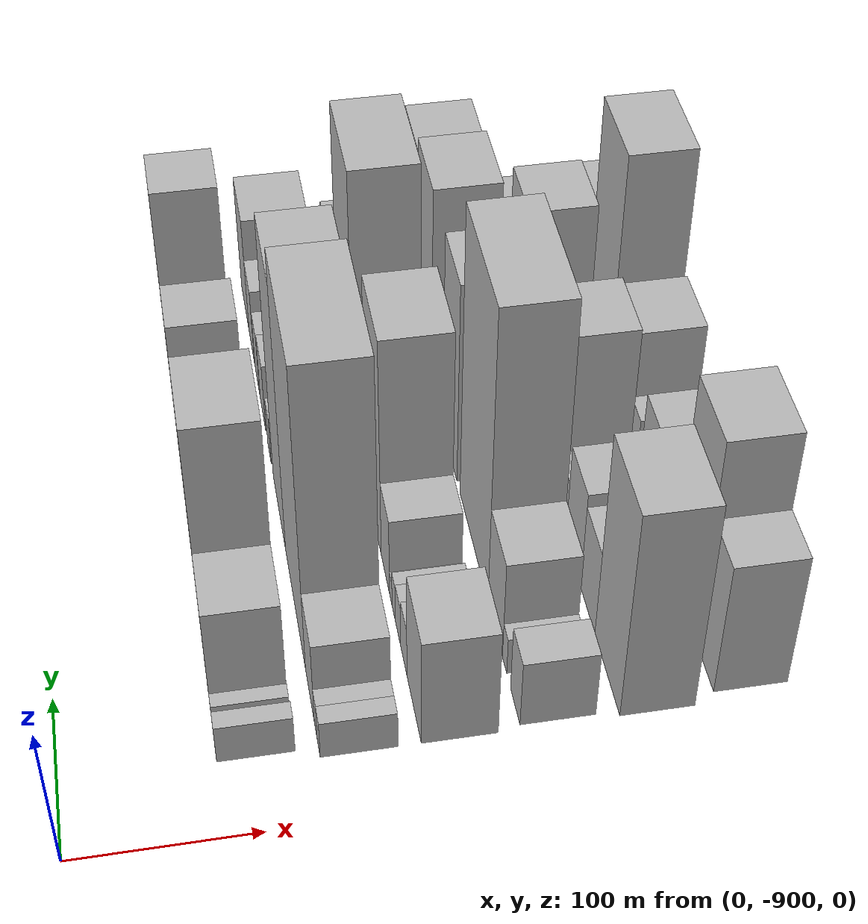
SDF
<sdf version="1.6">
 <world name="default">
  <model name="building_1">
   <static>1</static>
   <pose>100.0000 -848.5765 0 0.000000 0.000000 0.000000</pose>
   <link name="link">
    <pose>0 0 13.50 0 0 0</pose>
    <collision name="collision"><geometry><box><size>40.0000 10.8470 27.0000</size></box></geometry></collision>
    <visual name="visual">
     <cast_shadows>0</cast_shadows>
     <geometry><box><size>40.0000 10.8470 27.0000</size></box></geometry>
     <material>
      <script>
       <uri>model://HANNAS_wall/materials/scripts</uri>
       <uri>model://HANNAS_wall/materials/textures</uri>
       <name>vrc/HANNAS_wall</name>
      </script>
     </material>
    </visual>
   </link>
  </model>
  <model name="building_2">
   <static>1</static>
   <pose>100.0000 -828.7338 0 0.000000 0.000000 0.000000</pose>
   <link name="link">
    <pose>0 0 9.00 0 0 0</pose>
    <collision name="collision"><geometry><box><size>40.0000 8.8384 18.0000</size></box></geometry></collision>
    <visual name="visual">
     <cast_shadows>0</cast_shadows>
     <geometry><box><size>40.0000 8.8384 18.0000</size></box></geometry>
     <material>
      <script>
       <uri>model://HANNAS_wall/materials/scripts</uri>
       <uri>model://HANNAS_wall/materials/textures</uri>
       <name>vrc/HANNAS_wall</name>
      </script>
     </material>
    </visual>
   </link>
  </model>
  <model name="building_3">
   <static>1</static>
   <pose>100.0000 -800.2279 0 0.000000 0.000000 0.000000</pose>
   <link name="link">
    <pose>0 0 37.50 0 0 0</pose>
    <collision name="collision"><geometry><box><size>40.0000 42.1734 75.0000</size></box></geometry></collision>
    <visual name="visual">
     <cast_shadows>0</cast_shadows>
     <geometry><box><size>40.0000 42.1734 75.0000</size></box></geometry>
     <material>
      <script>
       <uri>model://HANNAS_wall/materials/scripts</uri>
       <uri>model://HANNAS_wall/materials/textures</uri>
       <name>vrc/HANNAS_wall</name>
      </script>
     </material>
    </visual>
   </link>
  </model>
  <model name="building_4">
   <static>1</static>
   <pose>100.0000 -752.8294 0 0.000000 0.000000 0.000000</pose>
   <link name="link">
    <pose>0 0 81.00 0 0 0</pose>
    <collision name="collision"><geometry><box><size>40.0000 52.6236 162.0000</size></box></geometry></collision>
    <visual name="visual">
     <cast_shadows>0</cast_shadows>
     <geometry><box><size>40.0000 52.6236 162.0000</size></box></geometry>
     <material>
      <script>
       <uri>model://HANNAS_wall/materials/scripts</uri>
       <uri>model://HANNAS_wall/materials/textures</uri>
       <name>vrc/HANNAS_wall</name>
      </script>
     </material>
    </visual>
   </link>
  </model>
  <model name="building_5">
   <static>1</static>
   <pose>100.0000 -707.2681 0 0.000000 0.000000 0.000000</pose>
   <link name="link">
    <pose>0 0 58.50 0 0 0</pose>
    <collision name="collision"><geometry><box><size>40.0000 38.4989 117.0000</size></box></geometry></collision>
    <visual name="visual">
     <cast_shadows>0</cast_shadows>
     <geometry><box><size>40.0000 38.4989 117.0000</size></box></geometry>
     <material>
      <script>
       <uri>model://HANNAS_wall/materials/scripts</uri>
       <uri>model://HANNAS_wall/materials/textures</uri>
       <name>vrc/HANNAS_wall</name>
      </script>
     </material>
    </visual>
   </link>
  </model>
  <model name="building_6">
   <static>1</static>
   <pose>100.0000 -682.8651 0 0.000000 0.000000 0.000000</pose>
   <link name="link">
    <pose>0 0 12.00 0 0 0</pose>
    <collision name="collision"><geometry><box><size>40.0000 10.3071 24.0000</size></box></geometry></collision>
    <visual name="visual">
     <cast_shadows>0</cast_shadows>
     <geometry><box><size>40.0000 10.3071 24.0000</size></box></geometry>
     <material>
      <script>
       <uri>model://HANNAS_wall/materials/scripts</uri>
       <uri>model://HANNAS_wall/materials/textures</uri>
       <name>vrc/HANNAS_wall</name>
      </script>
     </material>
    </visual>
   </link>
  </model>
  <model name="building_7">
   <static>1</static>
   <pose>100.0000 -650.5858 0 0.000000 0.000000 0.000000</pose>
   <link name="link">
    <pose>0 0 33.00 0 0 0</pose>
    <collision name="collision"><geometry><box><size>40.0000 38.2516 66.0000</size></box></geometry></collision>
    <visual name="visual">
     <cast_shadows>0</cast_shadows>
     <geometry><box><size>40.0000 38.2516 66.0000</size></box></geometry>
     <material>
      <script>
       <uri>model://HANNAS_wall/materials/scripts</uri>
       <uri>model://HANNAS_wall/materials/textures</uri>
       <name>vrc/HANNAS_wall</name>
      </script>
     </material>
    </visual>
   </link>
  </model>
  <model name="building_8">
   <static>1</static>
   <pose>100.0000 -613.0949 0 0.000000 0.000000 0.000000</pose>
   <link name="link">
    <pose>0 0 49.50 0 0 0</pose>
    <collision name="collision"><geometry><box><size>40.0000 36.7302 99.0000</size></box></geometry></collision>
    <visual name="visual">
     <cast_shadows>0</cast_shadows>
     <geometry><box><size>40.0000 36.7302 99.0000</size></box></geometry>
     <material>
      <script>
       <uri>model://HANNAS_wall/materials/scripts</uri>
       <uri>model://HANNAS_wall/materials/textures</uri>
       <name>vrc/HANNAS_wall</name>
      </script>
     </material>
    </visual>
   </link>
  </model>
  <model name="building_9">
   <static>1</static>
   <pose>100.0000 -570.5289 0 0.000000 0.000000 0.000000</pose>
   <link name="link">
    <pose>0 0 30.00 0 0 0</pose>
    <collision name="collision"><geometry><box><size>40.0000 30.4017 60.0000</size></box></geometry></collision>
    <visual name="visual">
     <cast_shadows>0</cast_shadows>
     <geometry><box><size>40.0000 30.4017 60.0000</size></box></geometry>
     <material>
      <script>
       <uri>model://HANNAS_wall/materials/scripts</uri>
       <uri>model://HANNAS_wall/materials/textures</uri>
       <name>vrc/HANNAS_wall</name>
      </script>
     </material>
    </visual>
   </link>
  </model>
  <model name="building_10">
   <static>1</static>
   <pose>100.0000 -543.8364 0 0.000000 0.000000 0.000000</pose>
   <link name="link">
    <pose>0 0 19.50 0 0 0</pose>
    <collision name="collision"><geometry><box><size>40.0000 22.9834 39.0000</size></box></geometry></collision>
    <visual name="visual">
     <cast_shadows>0</cast_shadows>
     <geometry><box><size>40.0000 22.9834 39.0000</size></box></geometry>
     <material>
      <script>
       <uri>model://HANNAS_wall/materials/scripts</uri>
       <uri>model://HANNAS_wall/materials/textures</uri>
       <name>vrc/HANNAS_wall</name>
      </script>
     </material>
    </visual>
   </link>
  </model>
  <model name="building_11">
   <static>1</static>
   <pose>100.0000 -509.9247 0 0.000000 0.000000 0.000000</pose>
   <link name="link">
    <pose>0 0 57.00 0 0 0</pose>
    <collision name="collision"><geometry><box><size>40.0000 38.8399 114.0000</size></box></geometry></collision>
    <visual name="visual">
     <cast_shadows>0</cast_shadows>
     <geometry><box><size>40.0000 38.8399 114.0000</size></box></geometry>
     <material>
      <script>
       <uri>model://HANNAS_wall/materials/scripts</uri>
       <uri>model://HANNAS_wall/materials/textures</uri>
       <name>vrc/HANNAS_wall</name>
      </script>
     </material>
    </visual>
   </link>
  </model>
  <model name="building_51">
   <static>1</static>
   <pose>152.0000 -854.2418 0 0.000000 0.000000 0.000000</pose>
   <link name="link">
    <pose>0 0 13.50 0 0 0</pose>
    <collision name="collision"><geometry><box><size>40.0000 11.5164 27.0000</size></box></geometry></collision>
    <visual name="visual">
     <cast_shadows>0</cast_shadows>
     <geometry><box><size>40.0000 11.5164 27.0000</size></box></geometry>
     <material>
      <script>
       <uri>model://HANNAS_wall/materials/scripts</uri>
       <uri>model://HANNAS_wall/materials/textures</uri>
       <name>vrc/HANNAS_wall</name>
      </script>
     </material>
    </visual>
   </link>
  </model>
  <model name="building_52">
   <static>1</static>
   <pose>152.0000 -843.0489 0 0.000000 0.000000 0.000000</pose>
   <link name="link">
    <pose>0 0 13.50 0 0 0</pose>
    <collision name="collision"><geometry><box><size>40.0000 10.8695 27.0000</size></box></geometry></collision>
    <visual name="visual">
     <cast_shadows>0</cast_shadows>
     <geometry><box><size>40.0000 10.8695 27.0000</size></box></geometry>
     <material>
      <script>
       <uri>model://HANNAS_wall/materials/scripts</uri>
       <uri>model://HANNAS_wall/materials/textures</uri>
       <name>vrc/HANNAS_wall</name>
      </script>
     </material>
    </visual>
   </link>
  </model>
  <model name="building_53">
   <static>1</static>
   <pose>152.0000 -819.8886 0 0.000000 0.000000 0.000000</pose>
   <link name="link">
    <pose>0 0 30.00 0 0 0</pose>
    <collision name="collision"><geometry><box><size>40.0000 35.4512 60.0000</size></box></geometry></collision>
    <visual name="visual">
     <cast_shadows>0</cast_shadows>
     <geometry><box><size>40.0000 35.4512 60.0000</size></box></geometry>
     <material>
      <script>
       <uri>model://HANNAS_wall/materials/scripts</uri>
       <uri>model://HANNAS_wall/materials/textures</uri>
       <name>vrc/HANNAS_wall</name>
      </script>
     </material>
    </visual>
   </link>
  </model>
  <model name="building_54">
   <static>1</static>
   <pose>152.0000 -759.0774 0 0.000000 0.000000 0.000000</pose>
   <link name="link">
    <pose>0 0 108.00 0 0 0</pose>
    <collision name="collision"><geometry><box><size>40.0000 86.1711 216.0000</size></box></geometry></collision>
    <visual name="visual">
     <cast_shadows>0</cast_shadows>
     <geometry><box><size>40.0000 86.1711 216.0000</size></box></geometry>
     <material>
      <script>
       <uri>model://HANNAS_wall/materials/scripts</uri>
       <uri>model://HANNAS_wall/materials/textures</uri>
       <name>vrc/HANNAS_wall</name>
      </script>
     </material>
    </visual>
   </link>
  </model>
  <model name="building_55">
   <static>1</static>
   <pose>152.0000 -686.6378 0 0.000000 0.000000 0.000000</pose>
   <link name="link">
    <pose>0 0 96.00 0 0 0</pose>
    <collision name="collision"><geometry><box><size>40.0000 58.7080 192.0000</size></box></geometry></collision>
    <visual name="visual">
     <cast_shadows>0</cast_shadows>
     <geometry><box><size>40.0000 58.7080 192.0000</size></box></geometry>
     <material>
      <script>
       <uri>model://HANNAS_wall/materials/scripts</uri>
       <uri>model://HANNAS_wall/materials/textures</uri>
       <name>vrc/HANNAS_wall</name>
      </script>
     </material>
    </visual>
   </link>
  </model>
  <model name="building_56">
   <static>1</static>
   <pose>152.0000 -638.2827 0 0.000000 0.000000 0.000000</pose>
   <link name="link">
    <pose>0 0 18.00 0 0 0</pose>
    <collision name="collision"><geometry><box><size>40.0000 18.0022 36.0000</size></box></geometry></collision>
    <visual name="visual">
     <cast_shadows>0</cast_shadows>
     <geometry><box><size>40.0000 18.0022 36.0000</size></box></geometry>
     <material>
      <script>
       <uri>model://HANNAS_wall/materials/scripts</uri>
       <uri>model://HANNAS_wall/materials/textures</uri>
       <name>vrc/HANNAS_wall</name>
      </script>
     </material>
    </visual>
   </link>
  </model>
  <model name="building_57">
   <static>1</static>
   <pose>152.0000 -605.1365 0 0.000000 0.000000 0.000000</pose>
   <link name="link">
    <pose>0 0 25.50 0 0 0</pose>
    <collision name="collision"><geometry><box><size>40.0000 28.2901 51.0000</size></box></geometry></collision>
    <visual name="visual">
     <cast_shadows>0</cast_shadows>
     <geometry><box><size>40.0000 28.2901 51.0000</size></box></geometry>
     <material>
      <script>
       <uri>model://HANNAS_wall/materials/scripts</uri>
       <uri>model://HANNAS_wall/materials/textures</uri>
       <name>vrc/HANNAS_wall</name>
      </script>
     </material>
    </visual>
   </link>
  </model>
  <model name="building_58">
   <static>1</static>
   <pose>152.0000 -575.1443 0 0.000000 0.000000 0.000000</pose>
   <link name="link">
    <pose>0 0 22.50 0 0 0</pose>
    <collision name="collision"><geometry><box><size>40.0000 23.6943 45.0000</size></box></geometry></collision>
    <visual name="visual">
     <cast_shadows>0</cast_shadows>
     <geometry><box><size>40.0000 23.6943 45.0000</size></box></geometry>
     <material>
      <script>
       <uri>model://HANNAS_wall/materials/scripts</uri>
       <uri>model://HANNAS_wall/materials/textures</uri>
       <name>vrc/HANNAS_wall</name>
      </script>
     </material>
    </visual>
   </link>
  </model>
  <model name="building_59">
   <static>1</static>
   <pose>152.0000 -544.2333 0 0.000000 0.000000 0.000000</pose>
   <link name="link">
    <pose>0 0 28.50 0 0 0</pose>
    <collision name="collision"><geometry><box><size>40.0000 30.1277 57.0000</size></box></geometry></collision>
    <visual name="visual">
     <cast_shadows>0</cast_shadows>
     <geometry><box><size>40.0000 30.1277 57.0000</size></box></geometry>
     <material>
      <script>
       <uri>model://HANNAS_wall/materials/scripts</uri>
       <uri>model://HANNAS_wall/materials/textures</uri>
       <name>vrc/HANNAS_wall</name>
      </script>
     </material>
    </visual>
   </link>
  </model>
  <model name="building_60">
   <static>1</static>
   <pose>152.0000 -507.1727 0 0.000000 0.000000 0.000000</pose>
   <link name="link">
    <pose>0 0 43.50 0 0 0</pose>
    <collision name="collision"><geometry><box><size>40.0000 43.9935 87.0000</size></box></geometry></collision>
    <visual name="visual">
     <cast_shadows>0</cast_shadows>
     <geometry><box><size>40.0000 43.9935 87.0000</size></box></geometry>
     <material>
      <script>
       <uri>model://HANNAS_wall/materials/scripts</uri>
       <uri>model://HANNAS_wall/materials/textures</uri>
       <name>vrc/HANNAS_wall</name>
      </script>
     </material>
    </visual>
   </link>
  </model>
  <model name="building_99">
   <static>1</static>
   <pose>204.0000 -837.7144 0 0.000000 0.000000 0.000000</pose>
   <link name="link">
    <pose>0 0 39.00 0 0 0</pose>
    <collision name="collision"><geometry><box><size>40.0000 44.5713 78.0000</size></box></geometry></collision>
    <visual name="visual">
     <cast_shadows>0</cast_shadows>
     <geometry><box><size>40.0000 44.5713 78.0000</size></box></geometry>
     <material>
      <script>
       <uri>model://HANNAS_wall/materials/scripts</uri>
       <uri>model://HANNAS_wall/materials/textures</uri>
       <name>vrc/HANNAS_wall</name>
      </script>
     </material>
    </visual>
   </link>
  </model>
  <model name="building_100">
   <static>1</static>
   <pose>204.0000 -805.4372 0 0.000000 0.000000 0.000000</pose>
   <link name="link">
    <pose>0 0 18.00 0 0 0</pose>
    <collision name="collision"><geometry><box><size>40.0000 19.9831 36.0000</size></box></geometry></collision>
    <visual name="visual">
     <cast_shadows>0</cast_shadows>
     <geometry><box><size>40.0000 19.9831 36.0000</size></box></geometry>
     <material>
      <script>
       <uri>model://HANNAS_wall/materials/scripts</uri>
       <uri>model://HANNAS_wall/materials/textures</uri>
       <name>vrc/HANNAS_wall</name>
      </script>
     </material>
    </visual>
   </link>
  </model>
  <model name="building_101">
   <static>1</static>
   <pose>204.0000 -786.7669 0 0.000000 0.000000 0.000000</pose>
   <link name="link">
    <pose>0 0 15.00 0 0 0</pose>
    <collision name="collision"><geometry><box><size>40.0000 17.3576 30.0000</size></box></geometry></collision>
    <visual name="visual">
     <cast_shadows>0</cast_shadows>
     <geometry><box><size>40.0000 17.3576 30.0000</size></box></geometry>
     <material>
      <script>
       <uri>model://HANNAS_wall/materials/scripts</uri>
       <uri>model://HANNAS_wall/materials/textures</uri>
       <name>vrc/HANNAS_wall</name>
      </script>
     </material>
    </visual>
   </link>
  </model>
  <model name="building_102">
   <static>1</static>
   <pose>204.0000 -772.2204 0 0.000000 0.000000 0.000000</pose>
   <link name="link">
    <pose>0 0 13.50 0 0 0</pose>
    <collision name="collision"><geometry><box><size>40.0000 11.7354 27.0000</size></box></geometry></collision>
    <visual name="visual">
     <cast_shadows>0</cast_shadows>
     <geometry><box><size>40.0000 11.7354 27.0000</size></box></geometry>
     <material>
      <script>
       <uri>model://HANNAS_wall/materials/scripts</uri>
       <uri>model://HANNAS_wall/materials/textures</uri>
       <name>vrc/HANNAS_wall</name>
      </script>
     </material>
    </visual>
   </link>
  </model>
  <model name="building_103">
   <static>1</static>
   <pose>204.0000 -762.1519 0 0.000000 0.000000 0.000000</pose>
   <link name="link">
    <pose>0 0 9.00 0 0 0</pose>
    <collision name="collision"><geometry><box><size>40.0000 8.4016 18.0000</size></box></geometry></collision>
    <visual name="visual">
     <cast_shadows>0</cast_shadows>
     <geometry><box><size>40.0000 8.4016 18.0000</size></box></geometry>
     <material>
      <script>
       <uri>model://HANNAS_wall/materials/scripts</uri>
       <uri>model://HANNAS_wall/materials/textures</uri>
       <name>vrc/HANNAS_wall</name>
      </script>
     </material>
    </visual>
   </link>
  </model>
  <model name="building_104">
   <static>1</static>
   <pose>204.0000 -743.3916 0 0.000000 0.000000 0.000000</pose>
   <link name="link">
    <pose>0 0 28.50 0 0 0</pose>
    <collision name="collision"><geometry><box><size>40.0000 29.1189 57.0000</size></box></geometry></collision>
    <visual name="visual">
     <cast_shadows>0</cast_shadows>
     <geometry><box><size>40.0000 29.1189 57.0000</size></box></geometry>
     <material>
      <script>
       <uri>model://HANNAS_wall/materials/scripts</uri>
       <uri>model://HANNAS_wall/materials/textures</uri>
       <name>vrc/HANNAS_wall</name>
      </script>
     </material>
    </visual>
   </link>
  </model>
  <model name="building_105">
   <static>1</static>
   <pose>204.0000 -702.3561 0 0.000000 0.000000 0.000000</pose>
   <link name="link">
    <pose>0 0 79.50 0 0 0</pose>
    <collision name="collision"><geometry><box><size>40.0000 52.9523 159.0000</size></box></geometry></collision>
    <visual name="visual">
     <cast_shadows>0</cast_shadows>
     <geometry><box><size>40.0000 52.9523 159.0000</size></box></geometry>
     <material>
      <script>
       <uri>model://HANNAS_wall/materials/scripts</uri>
       <uri>model://HANNAS_wall/materials/textures</uri>
       <name>vrc/HANNAS_wall</name>
      </script>
     </material>
    </visual>
   </link>
  </model>
  <model name="building_106">
   <static>1</static>
   <pose>204.0000 -660.2107 0 0.000000 0.000000 0.000000</pose>
   <link name="link">
    <pose>0 0 28.50 0 0 0</pose>
    <collision name="collision"><geometry><box><size>40.0000 31.3385 57.0000</size></box></geometry></collision>
    <visual name="visual">
     <cast_shadows>0</cast_shadows>
     <geometry><box><size>40.0000 31.3385 57.0000</size></box></geometry>
     <material>
      <script>
       <uri>model://HANNAS_wall/materials/scripts</uri>
       <uri>model://HANNAS_wall/materials/textures</uri>
       <name>vrc/HANNAS_wall</name>
      </script>
     </material>
    </visual>
   </link>
  </model>
  <model name="building_107">
   <static>1</static>
   <pose>204.0000 -640.6285 0 0.000000 0.000000 0.000000</pose>
   <link name="link">
    <pose>0 0 9.00 0 0 0</pose>
    <collision name="collision"><geometry><box><size>40.0000 7.8259 18.0000</size></box></geometry></collision>
    <visual name="visual">
     <cast_shadows>0</cast_shadows>
     <geometry><box><size>40.0000 7.8259 18.0000</size></box></geometry>
     <material>
      <script>
       <uri>model://HANNAS_wall/materials/scripts</uri>
       <uri>model://HANNAS_wall/materials/textures</uri>
       <name>vrc/HANNAS_wall</name>
      </script>
     </material>
    </visual>
   </link>
  </model>
  <model name="building_108">
   <static>1</static>
   <pose>204.0000 -594.1416 0 0.000000 0.000000 0.000000</pose>
   <link name="link">
    <pose>0 0 94.50 0 0 0</pose>
    <collision name="collision"><geometry><box><size>40.0000 65.1478 189.0000</size></box></geometry></collision>
    <visual name="visual">
     <cast_shadows>0</cast_shadows>
     <geometry><box><size>40.0000 65.1478 189.0000</size></box></geometry>
     <material>
      <script>
       <uri>model://HANNAS_wall/materials/scripts</uri>
       <uri>model://HANNAS_wall/materials/textures</uri>
       <name>vrc/HANNAS_wall</name>
      </script>
     </material>
    </visual>
   </link>
  </model>
  <model name="building_109">
   <static>1</static>
   <pose>204.0000 -542.8027 0 0.000000 0.000000 0.000000</pose>
   <link name="link">
    <pose>0 0 22.50 0 0 0</pose>
    <collision name="collision"><geometry><box><size>40.0000 25.5301 45.0000</size></box></geometry></collision>
    <visual name="visual">
     <cast_shadows>0</cast_shadows>
     <geometry><box><size>40.0000 25.5301 45.0000</size></box></geometry>
     <material>
      <script>
       <uri>model://HANNAS_wall/materials/scripts</uri>
       <uri>model://HANNAS_wall/materials/textures</uri>
       <name>vrc/HANNAS_wall</name>
      </script>
     </material>
    </visual>
   </link>
  </model>
  <model name="building_110">
   <static>1</static>
   <pose>204.0000 -510.4452 0 0.000000 0.000000 0.000000</pose>
   <link name="link">
    <pose>0 0 33.00 0 0 0</pose>
    <collision name="collision"><geometry><box><size>40.0000 39.1849 66.0000</size></box></geometry></collision>
    <visual name="visual">
     <cast_shadows>0</cast_shadows>
     <geometry><box><size>40.0000 39.1849 66.0000</size></box></geometry>
     <material>
      <script>
       <uri>model://HANNAS_wall/materials/scripts</uri>
       <uri>model://HANNAS_wall/materials/textures</uri>
       <name>vrc/HANNAS_wall</name>
      </script>
     </material>
    </visual>
   </link>
  </model>
  <model name="building_151">
   <static>1</static>
   <pose>256.0000 -844.9221 0 0.000000 0.000000 0.000000</pose>
   <link name="link">
    <pose>0 0 24.00 0 0 0</pose>
    <collision name="collision"><geometry><box><size>40.0000 24.1557 48.0000</size></box></geometry></collision>
    <visual name="visual">
     <cast_shadows>0</cast_shadows>
     <geometry><box><size>40.0000 24.1557 48.0000</size></box></geometry>
     <material>
      <script>
       <uri>model://HANNAS_wall/materials/scripts</uri>
       <uri>model://HANNAS_wall/materials/textures</uri>
       <name>vrc/HANNAS_wall</name>
      </script>
     </material>
    </visual>
   </link>
  </model>
  <model name="building_152">
   <static>1</static>
   <pose>256.0000 -817.2485 0 0.000000 0.000000 0.000000</pose>
   <link name="link">
    <pose>0 0 13.50 0 0 0</pose>
    <collision name="collision"><geometry><box><size>40.0000 11.1915 27.0000</size></box></geometry></collision>
    <visual name="visual">
     <cast_shadows>0</cast_shadows>
     <geometry><box><size>40.0000 11.1915 27.0000</size></box></geometry>
     <material>
      <script>
       <uri>model://HANNAS_wall/materials/scripts</uri>
       <uri>model://HANNAS_wall/materials/textures</uri>
       <name>vrc/HANNAS_wall</name>
      </script>
     </material>
    </visual>
   </link>
  </model>
  <model name="building_153">
   <static>1</static>
   <pose>256.0000 -791.8278 0 0.000000 0.000000 0.000000</pose>
   <link name="link">
    <pose>0 0 36.00 0 0 0</pose>
    <collision name="collision"><geometry><box><size>40.0000 39.6499 72.0000</size></box></geometry></collision>
    <visual name="visual">
     <cast_shadows>0</cast_shadows>
     <geometry><box><size>40.0000 39.6499 72.0000</size></box></geometry>
     <material>
      <script>
       <uri>model://HANNAS_wall/materials/scripts</uri>
       <uri>model://HANNAS_wall/materials/textures</uri>
       <name>vrc/HANNAS_wall</name>
      </script>
     </material>
    </visual>
   </link>
  </model>
  <model name="building_154">
   <static>1</static>
   <pose>256.0000 -730.6134 0 0.000000 0.000000 0.000000</pose>
   <link name="link">
    <pose>0 0 105.00 0 0 0</pose>
    <collision name="collision"><geometry><box><size>40.0000 82.7790 210.0000</size></box></geometry></collision>
    <visual name="visual">
     <cast_shadows>0</cast_shadows>
     <geometry><box><size>40.0000 82.7790 210.0000</size></box></geometry>
     <material>
      <script>
       <uri>model://HANNAS_wall/materials/scripts</uri>
       <uri>model://HANNAS_wall/materials/textures</uri>
       <name>vrc/HANNAS_wall</name>
      </script>
     </material>
    </visual>
   </link>
  </model>
  <model name="building_155">
   <static>1</static>
   <pose>256.0000 -656.6274 0 0.000000 0.000000 0.000000</pose>
   <link name="link">
    <pose>0 0 73.50 0 0 0</pose>
    <collision name="collision"><geometry><box><size>40.0000 45.1929 147.0000</size></box></geometry></collision>
    <visual name="visual">
     <cast_shadows>0</cast_shadows>
     <geometry><box><size>40.0000 45.1929 147.0000</size></box></geometry>
     <material>
      <script>
       <uri>model://HANNAS_wall/materials/scripts</uri>
       <uri>model://HANNAS_wall/materials/textures</uri>
       <name>vrc/HANNAS_wall</name>
      </script>
     </material>
    </visual>
   </link>
  </model>
  <model name="building_156">
   <static>1</static>
   <pose>256.0000 -619.0655 0 0.000000 0.000000 0.000000</pose>
   <link name="link">
    <pose>0 0 27.00 0 0 0</pose>
    <collision name="collision"><geometry><box><size>40.0000 29.9308 54.0000</size></box></geometry></collision>
    <visual name="visual">
     <cast_shadows>0</cast_shadows>
     <geometry><box><size>40.0000 29.9308 54.0000</size></box></geometry>
     <material>
      <script>
       <uri>model://HANNAS_wall/materials/scripts</uri>
       <uri>model://HANNAS_wall/materials/textures</uri>
       <name>vrc/HANNAS_wall</name>
      </script>
     </material>
    </visual>
   </link>
  </model>
  <model name="building_157">
   <static>1</static>
   <pose>256.0000 -571.0725 0 0.000000 0.000000 0.000000</pose>
   <link name="link">
    <pose>0 0 73.50 0 0 0</pose>
    <collision name="collision"><geometry><box><size>40.0000 50.0552 147.0000</size></box></geometry></collision>
    <visual name="visual">
     <cast_shadows>0</cast_shadows>
     <geometry><box><size>40.0000 50.0552 147.0000</size></box></geometry>
     <material>
      <script>
       <uri>model://HANNAS_wall/materials/scripts</uri>
       <uri>model://HANNAS_wall/materials/textures</uri>
       <name>vrc/HANNAS_wall</name>
      </script>
     </material>
    </visual>
   </link>
  </model>
  <model name="building_158">
   <static>1</static>
   <pose>256.0000 -523.3412 0 0.000000 0.000000 0.000000</pose>
   <link name="link">
    <pose>0 0 69.00 0 0 0</pose>
    <collision name="collision"><geometry><box><size>40.0000 45.4072 138.0000</size></box></geometry></collision>
    <visual name="visual">
     <cast_shadows>0</cast_shadows>
     <geometry><box><size>40.0000 45.4072 138.0000</size></box></geometry>
     <material>
      <script>
       <uri>model://HANNAS_wall/materials/scripts</uri>
       <uri>model://HANNAS_wall/materials/textures</uri>
       <name>vrc/HANNAS_wall</name>
      </script>
     </material>
    </visual>
   </link>
  </model>
  <model name="building_201">
   <static>1</static>
   <pose>308.0000 -832.1944 0 0.000000 0.000000 0.000000</pose>
   <link name="link">
    <pose>0 0 75.00 0 0 0</pose>
    <collision name="collision"><geometry><box><size>40.0000 55.6111 150.0000</size></box></geometry></collision>
    <visual name="visual">
     <cast_shadows>0</cast_shadows>
     <geometry><box><size>40.0000 55.6111 150.0000</size></box></geometry>
     <material>
      <script>
       <uri>model://HANNAS_wall/materials/scripts</uri>
       <uri>model://HANNAS_wall/materials/textures</uri>
       <name>vrc/HANNAS_wall</name>
      </script>
     </material>
    </visual>
   </link>
  </model>
  <model name="building_202">
   <static>1</static>
   <pose>308.0000 -787.3812 0 0.000000 0.000000 0.000000</pose>
   <link name="link">
    <pose>0 0 31.50 0 0 0</pose>
    <collision name="collision"><geometry><box><size>40.0000 34.0152 63.0000</size></box></geometry></collision>
    <visual name="visual">
     <cast_shadows>0</cast_shadows>
     <geometry><box><size>40.0000 34.0152 63.0000</size></box></geometry>
     <material>
      <script>
       <uri>model://HANNAS_wall/materials/scripts</uri>
       <uri>model://HANNAS_wall/materials/textures</uri>
       <name>vrc/HANNAS_wall</name>
      </script>
     </material>
    </visual>
   </link>
  </model>
  <model name="building_203">
   <static>1</static>
   <pose>308.0000 -752.0325 0 0.000000 0.000000 0.000000</pose>
   <link name="link">
    <pose>0 0 36.00 0 0 0</pose>
    <collision name="collision"><geometry><box><size>40.0000 36.6822 72.0000</size></box></geometry></collision>
    <visual name="visual">
     <cast_shadows>0</cast_shadows>
     <geometry><box><size>40.0000 36.6822 72.0000</size></box></geometry>
     <material>
      <script>
       <uri>model://HANNAS_wall/materials/scripts</uri>
       <uri>model://HANNAS_wall/materials/textures</uri>
       <name>vrc/HANNAS_wall</name>
      </script>
     </material>
    </visual>
   </link>
  </model>
  <model name="building_204">
   <static>1</static>
   <pose>308.0000 -721.8908 0 0.000000 0.000000 0.000000</pose>
   <link name="link">
    <pose>0 0 22.50 0 0 0</pose>
    <collision name="collision"><geometry><box><size>40.0000 23.6012 45.0000</size></box></geometry></collision>
    <visual name="visual">
     <cast_shadows>0</cast_shadows>
     <geometry><box><size>40.0000 23.6012 45.0000</size></box></geometry>
     <material>
      <script>
       <uri>model://HANNAS_wall/materials/scripts</uri>
       <uri>model://HANNAS_wall/materials/textures</uri>
       <name>vrc/HANNAS_wall</name>
      </script>
     </material>
    </visual>
   </link>
  </model>
  <model name="building_205">
   <static>1</static>
   <pose>308.0000 -688.2619 0 0.000000 0.000000 0.000000</pose>
   <link name="link">
    <pose>0 0 64.50 0 0 0</pose>
    <collision name="collision"><geometry><box><size>40.0000 43.6565 129.0000</size></box></geometry></collision>
    <visual name="visual">
     <cast_shadows>0</cast_shadows>
     <geometry><box><size>40.0000 43.6565 129.0000</size></box></geometry>
     <material>
      <script>
       <uri>model://HANNAS_wall/materials/scripts</uri>
       <uri>model://HANNAS_wall/materials/textures</uri>
       <name>vrc/HANNAS_wall</name>
      </script>
     </material>
    </visual>
   </link>
  </model>
  <model name="building_206">
   <static>1</static>
   <pose>308.0000 -639.3593 0 0.000000 0.000000 0.000000</pose>
   <link name="link">
    <pose>0 0 28.50 0 0 0</pose>
    <collision name="collision"><geometry><box><size>40.0000 34.1489 57.0000</size></box></geometry></collision>
    <visual name="visual">
     <cast_shadows>0</cast_shadows>
     <geometry><box><size>40.0000 34.1489 57.0000</size></box></geometry>
     <material>
      <script>
       <uri>model://HANNAS_wall/materials/scripts</uri>
       <uri>model://HANNAS_wall/materials/textures</uri>
       <name>vrc/HANNAS_wall</name>
      </script>
     </material>
    </visual>
   </link>
  </model>
  <model name="building_207">
   <static>1</static>
   <pose>308.0000 -618.7280 0 0.000000 0.000000 0.000000</pose>
   <link name="link">
    <pose>0 0 7.50 0 0 0</pose>
    <collision name="collision"><geometry><box><size>40.0000 7.1136 15.0000</size></box></geometry></collision>
    <visual name="visual">
     <cast_shadows>0</cast_shadows>
     <geometry><box><size>40.0000 7.1136 15.0000</size></box></geometry>
     <material>
      <script>
       <uri>model://HANNAS_wall/materials/scripts</uri>
       <uri>model://HANNAS_wall/materials/textures</uri>
       <name>vrc/HANNAS_wall</name>
      </script>
     </material>
    </visual>
   </link>
  </model>
  <model name="building_208">
   <static>1</static>
   <pose>308.0000 -588.4398 0 0.000000 0.000000 0.000000</pose>
   <link name="link">
    <pose>0 0 67.50 0 0 0</pose>
    <collision name="collision"><geometry><box><size>40.0000 43.4629 135.0000</size></box></geometry></collision>
    <visual name="visual">
     <cast_shadows>0</cast_shadows>
     <geometry><box><size>40.0000 43.4629 135.0000</size></box></geometry>
     <material>
      <script>
       <uri>model://HANNAS_wall/materials/scripts</uri>
       <uri>model://HANNAS_wall/materials/textures</uri>
       <name>vrc/HANNAS_wall</name>
      </script>
     </material>
    </visual>
   </link>
  </model>
  <model name="building_209">
   <static>1</static>
   <pose>308.0000 -533.6918 0 0.000000 0.000000 0.000000</pose>
   <link name="link">
    <pose>0 0 42.00 0 0 0</pose>
    <collision name="collision"><geometry><box><size>40.0000 50.0331 84.0000</size></box></geometry></collision>
    <visual name="visual">
     <cast_shadows>0</cast_shadows>
     <geometry><box><size>40.0000 50.0331 84.0000</size></box></geometry>
     <material>
      <script>
       <uri>model://HANNAS_wall/materials/scripts</uri>
       <uri>model://HANNAS_wall/materials/textures</uri>
       <name>vrc/HANNAS_wall</name>
      </script>
     </material>
    </visual>
   </link>
  </model>
  <model name="building_210">
   <static>1</static>
   <pose>308.0000 -500.3927 0 0.000000 0.000000 0.000000</pose>
   <link name="link">
    <pose>0 0 15.00 0 0 0</pose>
    <collision name="collision"><geometry><box><size>40.0000 16.5652 30.0000</size></box></geometry></collision>
    <visual name="visual">
     <cast_shadows>0</cast_shadows>
     <geometry><box><size>40.0000 16.5652 30.0000</size></box></geometry>
     <material>
      <script>
       <uri>model://HANNAS_wall/materials/scripts</uri>
       <uri>model://HANNAS_wall/materials/textures</uri>
       <name>vrc/HANNAS_wall</name>
      </script>
     </material>
    </visual>
   </link>
  </model>
  <model name="building_252">
   <static>1</static>
   <pose>360.0000 -836.2457 0 0.000000 0.000000 0.000000</pose>
   <link name="link">
    <pose>0 0 48.00 0 0 0</pose>
    <collision name="collision"><geometry><box><size>40.0000 33.5087 96.0000</size></box></geometry></collision>
    <visual name="visual">
     <cast_shadows>0</cast_shadows>
     <geometry><box><size>40.0000 33.5087 96.0000</size></box></geometry>
     <material>
      <script>
       <uri>model://HANNAS_wall/materials/scripts</uri>
       <uri>model://HANNAS_wall/materials/textures</uri>
       <name>vrc/HANNAS_wall</name>
      </script>
     </material>
    </visual>
   </link>
  </model>
  <model name="building_253">
   <static>1</static>
   <pose>360.0000 -795.2308 0 0.000000 0.000000 0.000000</pose>
   <link name="link">
    <pose>0 0 75.00 0 0 0</pose>
    <collision name="collision"><geometry><box><size>40.0000 48.5211 150.0000</size></box></geometry></collision>
    <visual name="visual">
     <cast_shadows>0</cast_shadows>
     <geometry><box><size>40.0000 48.5211 150.0000</size></box></geometry>
     <material>
      <script>
       <uri>model://HANNAS_wall/materials/scripts</uri>
       <uri>model://HANNAS_wall/materials/textures</uri>
       <name>vrc/HANNAS_wall</name>
      </script>
     </material>
    </visual>
   </link>
  </model>
  <model name="building_254">
   <static>1</static>
   <pose>360.0000 -754.3148 0 0.000000 0.000000 0.000000</pose>
   <link name="link">
    <pose>0 0 28.50 0 0 0</pose>
    <collision name="collision"><geometry><box><size>40.0000 33.3107 57.0000</size></box></geometry></collision>
    <visual name="visual">
     <cast_shadows>0</cast_shadows>
     <geometry><box><size>40.0000 33.3107 57.0000</size></box></geometry>
     <material>
      <script>
       <uri>model://HANNAS_wall/materials/scripts</uri>
       <uri>model://HANNAS_wall/materials/textures</uri>
       <name>vrc/HANNAS_wall</name>
      </script>
     </material>
    </visual>
   </link>
  </model>
  <model name="building_255">
   <static>1</static>
   <pose>360.0000 -713.6006 0 0.000000 0.000000 0.000000</pose>
   <link name="link">
    <pose>0 0 33.00 0 0 0</pose>
    <collision name="collision"><geometry><box><size>40.0000 38.1177 66.0000</size></box></geometry></collision>
    <visual name="visual">
     <cast_shadows>0</cast_shadows>
     <geometry><box><size>40.0000 38.1177 66.0000</size></box></geometry>
     <material>
      <script>
       <uri>model://HANNAS_wall/materials/scripts</uri>
       <uri>model://HANNAS_wall/materials/textures</uri>
       <name>vrc/HANNAS_wall</name>
      </script>
     </material>
    </visual>
   </link>
  </model>
  <model name="building_256">
   <static>1</static>
   <pose>360.0000 -691.2568 0 0.000000 0.000000 0.000000</pose>
   <link name="link">
    <pose>0 0 7.50 0 0 0</pose>
    <collision name="collision"><geometry><box><size>40.0000 6.5699 15.0000</size></box></geometry></collision>
    <visual name="visual">
     <cast_shadows>0</cast_shadows>
     <geometry><box><size>40.0000 6.5699 15.0000</size></box></geometry>
     <material>
      <script>
       <uri>model://HANNAS_wall/materials/scripts</uri>
       <uri>model://HANNAS_wall/materials/textures</uri>
       <name>vrc/HANNAS_wall</name>
      </script>
     </material>
    </visual>
   </link>
  </model>
  <model name="building_257">
   <static>1</static>
   <pose>360.0000 -677.6385 0 0.000000 0.000000 0.000000</pose>
   <link name="link">
    <pose>0 0 19.50 0 0 0</pose>
    <collision name="collision"><geometry><box><size>40.0000 20.6667 39.0000</size></box></geometry></collision>
    <visual name="visual">
     <cast_shadows>0</cast_shadows>
     <geometry><box><size>40.0000 20.6667 39.0000</size></box></geometry>
     <material>
      <script>
       <uri>model://HANNAS_wall/materials/scripts</uri>
       <uri>model://HANNAS_wall/materials/textures</uri>
       <name>vrc/HANNAS_wall</name>
      </script>
     </material>
    </visual>
   </link>
  </model>
  <model name="building_258">
   <static>1</static>
   <pose>360.0000 -645.0775 0 0.000000 0.000000 0.000000</pose>
   <link name="link">
    <pose>0 0 43.50 0 0 0</pose>
    <collision name="collision"><geometry><box><size>40.0000 44.4554 87.0000</size></box></geometry></collision>
    <visual name="visual">
     <cast_shadows>0</cast_shadows>
     <geometry><box><size>40.0000 44.4554 87.0000</size></box></geometry>
     <material>
      <script>
       <uri>model://HANNAS_wall/materials/scripts</uri>
       <uri>model://HANNAS_wall/materials/textures</uri>
       <name>vrc/HANNAS_wall</name>
      </script>
     </material>
    </visual>
   </link>
  </model>
  <model name="building_259">
   <static>1</static>
   <pose>360.0000 -590.4368 0 0.000000 0.000000 0.000000</pose>
   <link name="link">
    <pose>0 0 87.00 0 0 0</pose>
    <collision name="collision"><geometry><box><size>40.0000 56.8258 174.0000</size></box></geometry></collision>
    <visual name="visual">
     <cast_shadows>0</cast_shadows>
     <geometry><box><size>40.0000 56.8258 174.0000</size></box></geometry>
     <material>
      <script>
       <uri>model://HANNAS_wall/materials/scripts</uri>
       <uri>model://HANNAS_wall/materials/textures</uri>
       <name>vrc/HANNAS_wall</name>
      </script>
     </material>
    </visual>
   </link>
  </model>
  <model name="building_260">
   <static>1</static>
   <pose>360.0000 -547.7073 0 0.000000 0.000000 0.000000</pose>
   <link name="link">
    <pose>0 0 28.50 0 0 0</pose>
    <collision name="collision"><geometry><box><size>40.0000 28.6334 57.0000</size></box></geometry></collision>
    <visual name="visual">
     <cast_shadows>0</cast_shadows>
     <geometry><box><size>40.0000 28.6334 57.0000</size></box></geometry>
     <material>
      <script>
       <uri>model://HANNAS_wall/materials/scripts</uri>
       <uri>model://HANNAS_wall/materials/textures</uri>
       <name>vrc/HANNAS_wall</name>
      </script>
     </material>
    </visual>
   </link>
  </model>
  <model name="building_261">
   <static>1</static>
   <pose>360.0000 -511.6894 0 0.000000 0.000000 0.000000</pose>
   <link name="link">
    <pose>0 0 37.50 0 0 0</pose>
    <collision name="collision"><geometry><box><size>40.0000 43.4024 75.0000</size></box></geometry></collision>
    <visual name="visual">
     <cast_shadows>0</cast_shadows>
     <geometry><box><size>40.0000 43.4024 75.0000</size></box></geometry>
     <material>
      <script>
       <uri>model://HANNAS_wall/materials/scripts</uri>
       <uri>model://HANNAS_wall/materials/textures</uri>
       <name>vrc/HANNAS_wall</name>
      </script>
     </material>
    </visual>
   </link>
  </model>
 </world>
</sdf>
